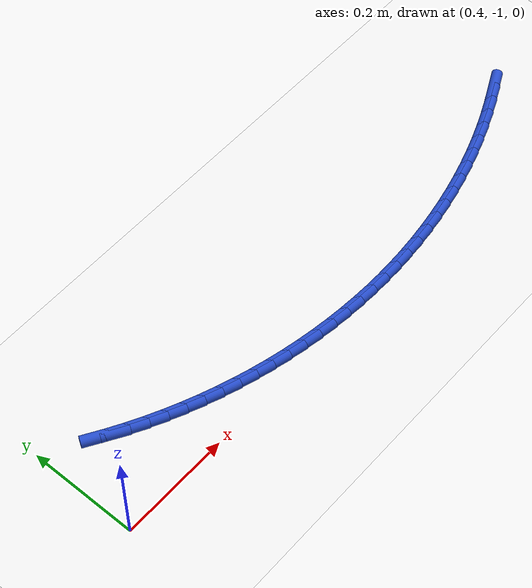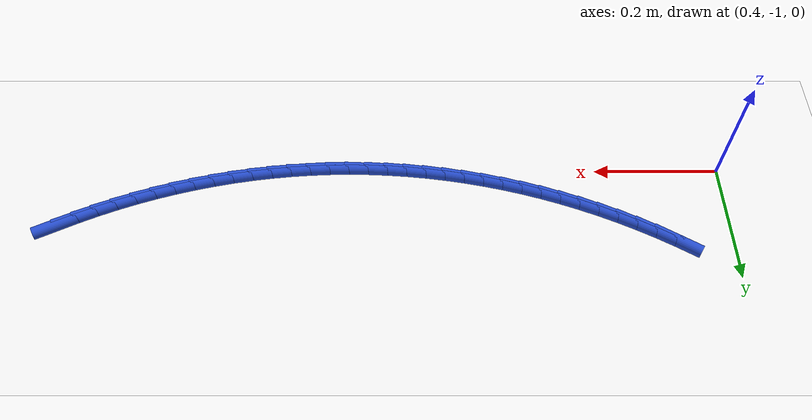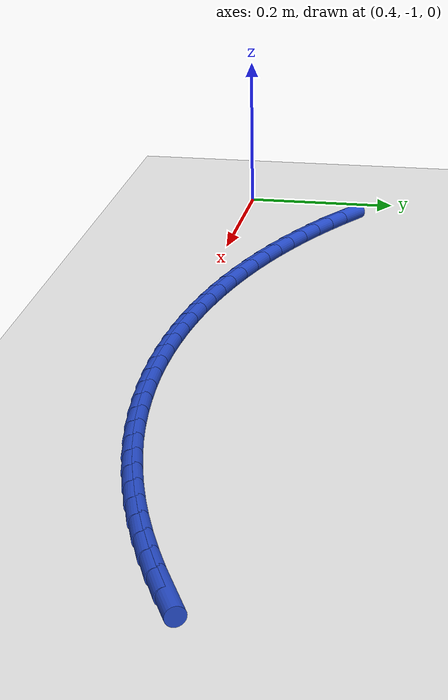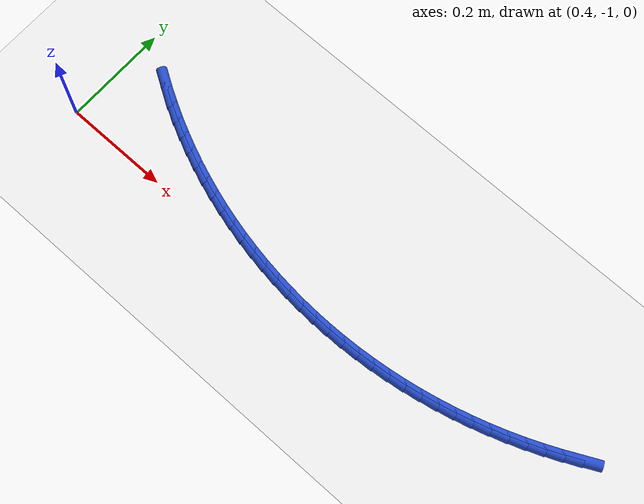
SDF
<sdf version="1.6">
 <world name="default">
  <model name="ground_plane">
   <static>1</static>
   <link name="link">
    <collision name="collision">
     <geometry><plane><normal>0 0 1</normal><size>100 100</size></plane></geometry>
     <surface><friction><ode><mu>100</mu><mu2>50</mu2></ode></friction></surface>
    </collision>
    <visual name="visual">
     <cast_shadows>0</cast_shadows>
     <geometry><plane><normal>0 0 1</normal><size>100 100</size></plane></geometry>
     <material>
      <script><uri>file://media/materials/scripts/gazebo.material</uri><name>Gazebo/WhiteGlow</name></script>
     </material>
    </visual>
   </link>
  </model>
  <model name="line">
   <static>1</static>
   <static>1</static>
   <static>1</static>
   <static>1</static>
   <static>1</static>
   <static>1</static>
   <static>1</static>
   <static>1</static>
   <static>1</static>
   <static>1</static>
   <static>1</static>
   <static>1</static>
   <static>1</static>
   <static>1</static>
   <static>1</static>
   <static>1</static>
   <static>1</static>
   <static>1</static>
   <static>1</static>
   <static>1</static>
   <static>1</static>
   <static>1</static>
   <static>1</static>
   <static>1</static>
   <static>1</static>
   <static>1</static>
   <static>1</static>
   <static>1</static>
   <static>1</static>
   <static>1</static>
   <static>1</static>
   <static>1</static>
   <static>1</static>
   <static>1</static>
   <static>1</static>
   <static>1</static>
   <static>1</static>
   <static>1</static>
   <static>1</static>
   <static>1</static>
   <static>1</static>
   <static>1</static>
   <static>1</static>
   <static>1</static>
   <static>1</static>
   <static>1</static>
   <static>1</static>
   <static>1</static>
   <static>1</static>
   <static>1</static>
   <static>1</static>
   <static>1</static>
   <static>1</static>
   <static>1</static>
   <static>1</static>
   <static>1</static>
   <static>1</static>
   <static>1</static>
   <static>1</static>
   <static>1</static>
   <static>1</static>
   <static>1</static>
   <static>1</static>
   <static>1</static>
   <static>1</static>
   <static>1</static>
   <static>1</static>
   <static>1</static>
   <static>1</static>
   <static>1</static>
   <static>1</static>
   <static>1</static>
   <static>1</static>
   <static>1</static>
   <static>1</static>
   <static>1</static>
   <static>1</static>
   <static>1</static>
   <static>1</static>
   <static>1</static>
   <static>1</static>
   <static>1</static>
   <static>1</static>
   <static>1</static>
   <static>1</static>
   <static>1</static>
   <static>1</static>
   <static>1</static>
   <static>1</static>
   <static>1</static>
   <static>1</static>
   <static>1</static>
   <static>1</static>
   <static>1</static>
   <static>1</static>
   <static>1</static>
   <static>1</static>
   <static>1</static>
   <static>1</static>
   <static>1</static>
   <static>1</static>
   <static>1</static>
   <static>1</static>
   <static>1</static>
   <static>1</static>
   <static>1</static>
   <static>1</static>
   <static>1</static>
   <static>1</static>
   <static>1</static>
   <static>1</static>
   <static>1</static>
   <static>1</static>
   <static>1</static>
   <static>1</static>
   <static>1</static>
   <static>1</static>
   <static>1</static>
   <static>1</static>
   <static>1</static>
   <static>1</static>
   <static>1</static>
   <static>1</static>
   <static>1</static>
   <static>1</static>
   <static>1</static>
   <static>1</static>
   <static>1</static>
   <static>1</static>
   <static>1</static>
   <static>1</static>
   <static>1</static>
   <static>1</static>
   <static>1</static>
   <static>1</static>
   <static>1</static>
   <link name="link_135">
    <pose>1.4539786968955695 -0.8909833598027821 0.01 0 1.57 0.45559534404739144</pose>
    <collision name="collision">
     <geometry><cylinder><radius>0.01</radius><length>0.08</length></cylinder></geometry>
    </collision>
    <visual name="visual">
     <material>
      <script><name>Gazebo/Blue</name><uri>file://media/materials/scripts/gazebo.material</uri></script>
     </material>
     <geometry><cylinder><radius>0.01</radius><length>0.08</length></cylinder></geometry>
    </visual>
   </link>
   <static>1</static>
   <link name="link_136">
    <pose>1.4257678067647297 -0.904805985471579 0.01 0 1.57 0.4242923618199552</pose>
    <collision name="collision">
     <geometry><cylinder><radius>0.01</radius><length>0.08</length></cylinder></geometry>
    </collision>
    <visual name="visual">
     <material>
      <script><name>Gazebo/Blue</name><uri>file://media/materials/scripts/gazebo.material</uri></script>
     </material>
     <geometry><cylinder><radius>0.01</radius><length>0.08</length></cylinder></geometry>
    </visual>
   </link>
   <static>1</static>
   <link name="link_137">
    <pose>1.3971384510980944 -0.9177387483690861 0.01 0 1.57 0.39294184700509244</pose>
    <collision name="collision">
     <geometry><cylinder><radius>0.01</radius><length>0.08</length></cylinder></geometry>
    </collision>
    <visual name="visual">
     <material>
      <script><name>Gazebo/Blue</name><uri>file://media/materials/scripts/gazebo.material</uri></script>
     </material>
     <geometry><cylinder><radius>0.01</radius><length>0.08</length></cylinder></geometry>
    </visual>
   </link>
   <static>1</static>
   <link name="link_138">
    <pose>1.3681183702448168 -0.9297675140814319 0.01 0 1.57 0.36151241313263716</pose>
    <collision name="collision">
     <geometry><cylinder><radius>0.01</radius><length>0.08</length></cylinder></geometry>
    </collision>
    <visual name="visual">
     <material>
      <script><name>Gazebo/Blue</name><uri>file://media/materials/scripts/gazebo.material</uri></script>
     </material>
     <geometry><cylinder><radius>0.01</radius><length>0.08</length></cylinder></geometry>
    </visual>
   </link>
   <static>1</static>
   <link name="link_139">
    <pose>1.3387353045540502 -0.9408781481947448 0.01 0 1.57 0.3299731315708009</pose>
    <collision name="collision">
     <geometry><cylinder><radius>0.01</radius><length>0.08</length></cylinder></geometry>
    </collision>
    <visual name="visual">
     <material>
      <script><name>Gazebo/Blue</name><uri>file://media/materials/scripts/gazebo.material</uri></script>
     </material>
     <geometry><cylinder><radius>0.01</radius><length>0.08</length></cylinder></geometry>
    </visual>
   </link>
   <static>1</static>
   <link name="link_140">
    <pose>1.3090169943749477 -0.9510565162951534 0.01 0 1.57 0.29834539914715935</pose>
    <collision name="collision">
     <geometry><cylinder><radius>0.01</radius><length>0.08</length></cylinder></geometry>
    </collision>
    <visual name="visual">
     <material>
      <script><name>Gazebo/Blue</name><uri>file://media/materials/scripts/gazebo.material</uri></script>
     </material>
     <geometry><cylinder><radius>0.01</radius><length>0.08</length></cylinder></geometry>
    </visual>
   </link>
   <static>1</static>
   <link name="link_141">
    <pose>1.2789916817341245 -0.9602900279732485 0.01 0 1.57 0.2668061175853264</pose>
    <collision name="collision">
     <geometry><cylinder><radius>0.01</radius><length>0.08</length></cylinder></geometry>
    </collision>
    <visual name="visual">
     <material>
      <script><name>Gazebo/Blue</name><uri>file://media/materials/scripts/gazebo.material</uri></script>
     </material>
     <geometry><cylinder><radius>0.01</radius><length>0.08</length></cylinder></geometry>
    </visual>
   </link>
   <static>1</static>
   <link name="link_142">
    <pose>1.248689615368036 -0.9685722688374699 0.01 0 1.57 0.2353766837128658</pose>
    <collision name="collision">
     <geometry><cylinder><radius>0.01</radius><length>0.08</length></cylinder></geometry>
    </collision>
    <visual name="visual">
     <material>
      <script><name>Gazebo/Blue</name><uri>file://media/materials/scripts/gazebo.material</uri></script>
     </material>
     <geometry><cylinder><radius>0.01</radius><length>0.08</length></cylinder></geometry>
    </visual>
   </link>
   <static>1</static>
   <link name="link_143">
    <pose>1.218141545690601 -0.9758983685007193 0.01 0 1.57 0.2040261688980023</pose>
    <collision name="collision">
     <geometry><cylinder><radius>0.01</radius><length>0.08</length></cylinder></geometry>
    </collision>
    <visual name="visual">
     <material>
      <script><name>Gazebo/Blue</name><uri>file://media/materials/scripts/gazebo.material</uri></script>
     </material>
     <geometry><cylinder><radius>0.01</radius><length>0.08</length></cylinder></geometry>
    </visual>
   </link>
   <static>1</static>
   <link name="link_144">
    <pose>1.1873782231157384 -0.9822634565758984 0.01 0 1.57 0.17272318667056916</pose>
    <collision name="collision">
     <geometry><cylinder><radius>0.01</radius><length>0.08</length></cylinder></geometry>
    </collision>
    <visual name="visual">
     <material>
      <script><name>Gazebo/Blue</name><uri>file://media/materials/scripts/gazebo.material</uri></script>
     </material>
     <geometry><cylinder><radius>0.01</radius><length>0.08</length></cylinder></geometry>
    </visual>
   </link>
   <static>1</static>
   <link name="link_145">
    <pose>1.1564303980573665 -0.9876626626759093 0.01 0 1.57 0.14143607868841765</pose>
    <collision name="collision">
     <geometry><cylinder><radius>0.01</radius><length>0.08</length></cylinder></geometry>
    </collision>
    <visual name="visual">
     <material>
      <script><name>Gazebo/Blue</name><uri>file://media/materials/scripts/gazebo.material</uri></script>
     </material>
     <geometry><cylinder><radius>0.01</radius><length>0.08</length></cylinder></geometry>
    </visual>
   </link>
   <static>1</static>
   <link name="link_146">
    <pose>1.125328820929403 -0.9920911164136534 0.01 0 1.57 0.11013309646097644</pose>
    <collision name="collision">
     <geometry><cylinder><radius>0.01</radius><length>0.08</length></cylinder></geometry>
    </collision>
    <visual name="visual">
     <material>
      <script><name>Gazebo/Blue</name><uri>file://media/materials/scripts/gazebo.material</uri></script>
     </material>
     <geometry><cylinder><radius>0.01</radius><length>0.08</length></cylinder></geometry>
    </visual>
   </link>
   <static>1</static>
   <link name="link_147">
    <pose>1.0941042421457665 -0.9955439474020328 0.01 0 1.57 0.07878258164612167</pose>
    <collision name="collision">
     <geometry><cylinder><radius>0.01</radius><length>0.08</length></cylinder></geometry>
    </collision>
    <visual name="visual">
     <material>
      <script><name>Gazebo/Blue</name><uri>file://media/materials/scripts/gazebo.material</uri></script>
     </material>
     <geometry><cylinder><radius>0.01</radius><length>0.08</length></cylinder></geometry>
    </visual>
   </link>
   <static>1</static>
   <link name="link_148">
    <pose>1.0627874121203755 -0.9980162852539494 0.01 0 1.57 0.0473531477736552</pose>
    <collision name="collision">
     <geometry><cylinder><radius>0.01</radius><length>0.08</length></cylinder></geometry>
    </collision>
    <visual name="visual">
     <material>
      <script><name>Gazebo/Blue</name><uri>file://media/materials/scripts/gazebo.material</uri></script>
     </material>
     <geometry><cylinder><radius>0.01</radius><length>0.08</length></cylinder></geometry>
    </visual>
   </link>
   <static>1</static>
   <link name="link_149">
    <pose>1.0314090812671475 -0.9995032595823045 0.01 0 1.57 0.01581386621182451</pose>
    <collision name="collision">
     <geometry><cylinder><radius>0.01</radius><length>0.08</length></cylinder></geometry>
    </collision>
    <visual name="visual">
     <material>
      <script><name>Gazebo/Blue</name><uri>file://media/materials/scripts/gazebo.material</uri></script>
     </material>
     <geometry><cylinder><radius>0.01</radius><length>0.08</length></cylinder></geometry>
    </visual>
   </link>
   <static>1</static>
   <link name="link_150">
    <pose>1.0000000000000013 -1.0000000000000002 0.01 0 1.57 -0.015813866211814017</pose>
    <collision name="collision">
     <geometry><cylinder><radius>0.01</radius><length>0.08</length></cylinder></geometry>
    </collision>
    <visual name="visual">
     <material>
      <script><name>Gazebo/Blue</name><uri>file://media/materials/scripts/gazebo.material</uri></script>
     </material>
     <geometry><cylinder><radius>0.01</radius><length>0.08</length></cylinder></geometry>
    </visual>
   </link>
   <static>1</static>
   <link name="link_151">
    <pose>0.9685909187328554 -0.9995032595823048 0.01 0 1.57 -0.04735314777366916</pose>
    <collision name="collision">
     <geometry><cylinder><radius>0.01</radius><length>0.08</length></cylinder></geometry>
    </collision>
    <visual name="visual">
     <material>
      <script><name>Gazebo/Blue</name><uri>file://media/materials/scripts/gazebo.material</uri></script>
     </material>
     <geometry><cylinder><radius>0.01</radius><length>0.08</length></cylinder></geometry>
    </visual>
   </link>
   <static>1</static>
   <link name="link_152">
    <pose>0.9372125878796272 -0.9980162852539493 0.01 0 1.57 -0.07878258164610352</pose>
    <collision name="collision">
     <geometry><cylinder><radius>0.01</radius><length>0.08</length></cylinder></geometry>
    </collision>
    <visual name="visual">
     <material>
      <script><name>Gazebo/Blue</name><uri>file://media/materials/scripts/gazebo.material</uri></script>
     </material>
     <geometry><cylinder><radius>0.01</radius><length>0.08</length></cylinder></geometry>
    </visual>
   </link>
   <static>1</static>
   <link name="link_153">
    <pose>0.905895757854236 -0.9955439474020332 0.01 0 1.57 -0.11013309646097254</pose>
    <collision name="collision">
     <geometry><cylinder><radius>0.01</radius><length>0.08</length></cylinder></geometry>
    </collision>
    <visual name="visual">
     <material>
      <script><name>Gazebo/Blue</name><uri>file://media/materials/scripts/gazebo.material</uri></script>
     </material>
     <geometry><cylinder><radius>0.01</radius><length>0.08</length></cylinder></geometry>
    </visual>
   </link>
   <static>1</static>
   <link name="link_154">
    <pose>0.8746711790705994 -0.992091116413654 0.01 0 1.57 -0.14143607868842017</pose>
    <collision name="collision">
     <geometry><cylinder><radius>0.01</radius><length>0.08</length></cylinder></geometry>
    </collision>
    <visual name="visual">
     <material>
      <script><name>Gazebo/Blue</name><uri>file://media/materials/scripts/gazebo.material</uri></script>
     </material>
     <geometry><cylinder><radius>0.01</radius><length>0.08</length></cylinder></geometry>
    </visual>
   </link>
   <static>1</static>
   <link name="link_155">
    <pose>0.8435696019426357 -0.9876626626759097 0.01 0 1.57 -0.17272318667056671</pose>
    <collision name="collision">
     <geometry><cylinder><radius>0.01</radius><length>0.08</length></cylinder></geometry>
    </collision>
    <visual name="visual">
     <material>
      <script><name>Gazebo/Blue</name><uri>file://media/materials/scripts/gazebo.material</uri></script>
     </material>
     <geometry><cylinder><radius>0.01</radius><length>0.08</length></cylinder></geometry>
    </visual>
   </link>
   <static>1</static>
   <link name="link_156">
    <pose>0.8126217768842634 -0.9822634565758989 0.01 0 1.57 -0.20402616889799607</pose>
    <collision name="collision">
     <geometry><cylinder><radius>0.01</radius><length>0.08</length></cylinder></geometry>
    </collision>
    <visual name="visual">
     <material>
      <script><name>Gazebo/Blue</name><uri>file://media/materials/scripts/gazebo.material</uri></script>
     </material>
     <geometry><cylinder><radius>0.01</radius><length>0.08</length></cylinder></geometry>
    </visual>
   </link>
   <static>1</static>
   <link name="link_157">
    <pose>0.7818584543094008 -0.97589836850072 0.01 0 1.57 -0.23537668371287954</pose>
    <collision name="collision">
     <geometry><cylinder><radius>0.01</radius><length>0.08</length></cylinder></geometry>
    </collision>
    <visual name="visual">
     <material>
      <script><name>Gazebo/Blue</name><uri>file://media/materials/scripts/gazebo.material</uri></script>
     </material>
     <geometry><cylinder><radius>0.01</radius><length>0.08</length></cylinder></geometry>
    </visual>
   </link>
   <static>1</static>
   <link name="link_158">
    <pose>0.7513103846319659 -0.9685722688374702 0.01 0 1.57 -0.2668061175853084</pose>
    <collision name="collision">
     <geometry><cylinder><radius>0.01</radius><length>0.08</length></cylinder></geometry>
    </collision>
    <visual name="visual">
     <material>
      <script><name>Gazebo/Blue</name><uri>file://media/materials/scripts/gazebo.material</uri></script>
     </material>
     <geometry><cylinder><radius>0.01</radius><length>0.08</length></cylinder></geometry>
    </visual>
   </link>
   <static>1</static>
   <link name="link_159">
    <pose>0.7210083182658773 -0.9602900279732492 0.01 0 1.57 -0.29834539914716485</pose>
    <collision name="collision">
     <geometry><cylinder><radius>0.01</radius><length>0.08</length></cylinder></geometry>
    </collision>
    <visual name="visual">
     <material>
      <script><name>Gazebo/Blue</name><uri>file://media/materials/scripts/gazebo.material</uri></script>
     </material>
     <geometry><cylinder><radius>0.01</radius><length>0.08</length></cylinder></geometry>
    </visual>
   </link>
   <static>1</static>
   <link name="link_160">
    <pose>0.6909830056250529 -0.9510565162951536 0.01 0 1.57 -0.3299731315708031</pose>
    <collision name="collision">
     <geometry><cylinder><radius>0.01</radius><length>0.08</length></cylinder></geometry>
    </collision>
    <visual name="visual">
     <material>
      <script><name>Gazebo/Blue</name><uri>file://media/materials/scripts/gazebo.material</uri></script>
     </material>
     <geometry><cylinder><radius>0.01</radius><length>0.08</length></cylinder></geometry>
    </visual>
   </link>
   <static>1</static>
   <link name="link_161">
    <pose>0.6612646954459502 -0.9408781481947449 0.01 0 1.57 -0.3615124131326367</pose>
    <collision name="collision">
     <geometry><cylinder><radius>0.01</radius><length>0.08</length></cylinder></geometry>
    </collision>
    <visual name="visual">
     <material>
      <script><name>Gazebo/Blue</name><uri>file://media/materials/scripts/gazebo.material</uri></script>
     </material>
     <geometry><cylinder><radius>0.01</radius><length>0.08</length></cylinder></geometry>
    </visual>
   </link>
   <static>1</static>
   <link name="link_162">
    <pose>0.6318816297551834 -0.9297675140814319 0.01 0 1.57 -0.39294184700509377</pose>
    <collision name="collision">
     <geometry><cylinder><radius>0.01</radius><length>0.08</length></cylinder></geometry>
    </collision>
    <visual name="visual">
     <material>
      <script><name>Gazebo/Blue</name><uri>file://media/materials/scripts/gazebo.material</uri></script>
     </material>
     <geometry><cylinder><radius>0.01</radius><length>0.08</length></cylinder></geometry>
    </visual>
   </link>
   <static>1</static>
   <link name="link_163">
    <pose>0.6028615489019058 -0.9177387483690861 0.01 0 1.57 -0.4242923618199502</pose>
    <collision name="collision">
     <geometry><cylinder><radius>0.01</radius><length>0.08</length></cylinder></geometry>
    </collision>
    <visual name="visual">
     <material>
      <script><name>Gazebo/Blue</name><uri>file://media/materials/scripts/gazebo.material</uri></script>
     </material>
     <geometry><cylinder><radius>0.01</radius><length>0.08</length></cylinder></geometry>
    </visual>
   </link>
   <static>1</static>
   <link name="link_164">
    <pose>0.5742321932352706 -0.9048059854715792 0.01 0 1.57 -0.4555953440473962</pose>
    <collision name="collision">
     <geometry><cylinder><radius>0.01</radius><length>0.08</length></cylinder></geometry>
    </collision>
    <visual name="visual">
     <material>
      <script><name>Gazebo/Blue</name><uri>file://media/materials/scripts/gazebo.material</uri></script>
     </material>
     <geometry><cylinder><radius>0.01</radius><length>0.08</length></cylinder></geometry>
    </visual>
   </link>
   <static>1</static>
   <link name="link_165">
    <pose>0.5460213031044308 -0.8909833598027821 0.01 0 1.57 -0.4868824520295399</pose>
    <collision name="collision">
     <geometry><cylinder><radius>0.01</radius><length>0.08</length></cylinder></geometry>
    </collision>
    <visual name="visual">
     <material>
      <script><name>Gazebo/Blue</name><uri>file://media/materials/scripts/gazebo.material</uri></script>
     </material>
     <geometry><cylinder><radius>0.01</radius><length>0.08</length></cylinder></geometry>
    </visual>
   </link>
   <static>1</static>
   <link name="link_166">
    <pose>0.5182566188585396 -0.8762850057765665 0.01 0 1.57 -0.518185434256987</pose>
    <collision name="collision">
     <geometry><cylinder><radius>0.01</radius><length>0.08</length></cylinder></geometry>
    </collision>
    <visual name="visual">
     <material>
      <script><name>Gazebo/Blue</name><uri>file://media/materials/scripts/gazebo.material</uri></script>
     </material>
     <geometry><cylinder><radius>0.01</radius><length>0.08</length></cylinder></geometry>
    </visual>
   </link>
   <static>1</static>
   <link name="link_167">
    <pose>0.49096588084675086 -0.860725057806804 0.01 0 1.57 -0.5495359490718429</pose>
    <collision name="collision">
     <geometry><cylinder><radius>0.01</radius><length>0.08</length></cylinder></geometry>
    </collision>
    <visual name="visual">
     <material>
      <script><name>Gazebo/Blue</name><uri>file://media/materials/scripts/gazebo.material</uri></script>
     </material>
     <geometry><cylinder><radius>0.01</radius><length>0.08</length></cylinder></geometry>
    </visual>
   </link>
   <static>1</static>
   <static>1</static>
   <static>1</static>
   <static>1</static>
   <static>1</static>
   <static>1</static>
   <static>1</static>
   <static>1</static>
   <static>1</static>
   <static>1</static>
   <static>1</static>
   <static>1</static>
   <static>1</static>
   <static>1</static>
   <static>1</static>
   <static>1</static>
   <static>1</static>
   <static>1</static>
   <static>1</static>
   <static>1</static>
   <static>1</static>
   <static>1</static>
   <static>1</static>
   <static>1</static>
   <static>1</static>
   <static>1</static>
   <static>1</static>
   <static>1</static>
   <static>1</static>
   <static>1</static>
   <static>1</static>
   <static>1</static>
   <static>1</static>
   <static>1</static>
  </model>
 </world>
</sdf>
